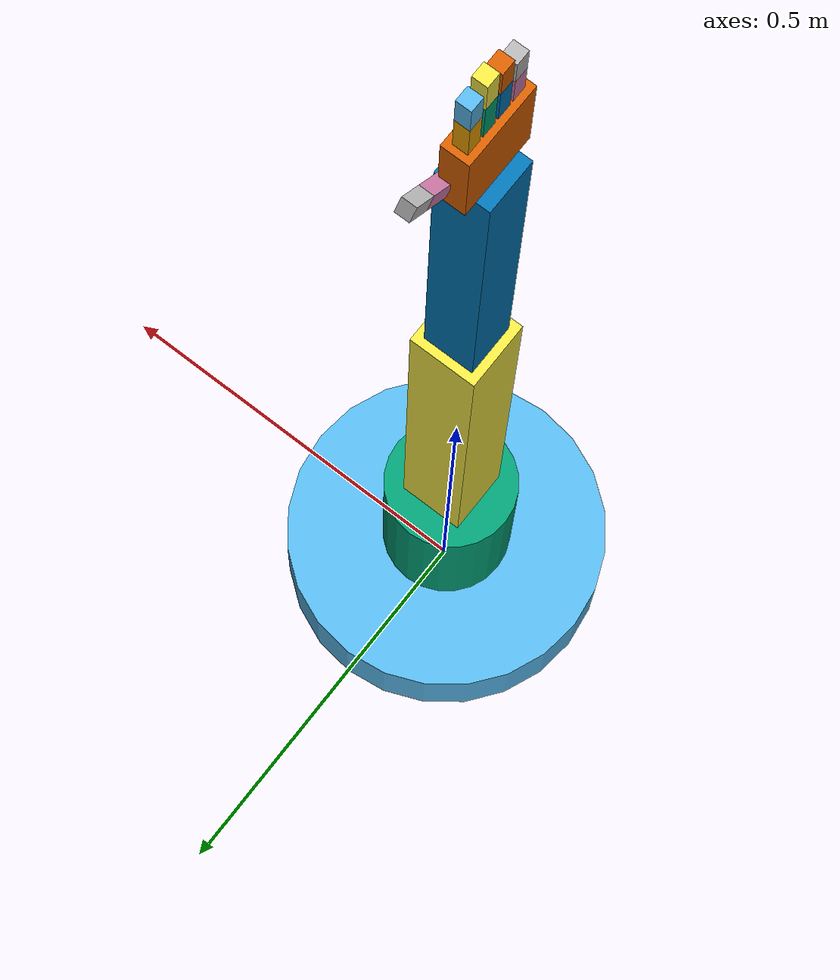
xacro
<?xml version="1.0"?>
<!-- Three-joint arm based on simple_arm.urdf with a five-finger hand.
     Process with xacro to get a plain URDF. -->
<robot name="hello_arm" xmlns:xacro="http://www.ros.org/wiki/xacro">

  <!-- Fix the arm base to the world. -->
  <link name="world"/>
  <joint name="world_to_base" type="fixed">
    <parent link="world"/>
    <child link="base_link"/>
  </joint>

  <link name="base_link">
    <visual>
      <origin xyz="0 0 0.05"/>
      <geometry><cylinder length="0.1" radius="0.2"/></geometry>
    </visual>
    <collision>
      <origin xyz="0 0 0.05"/>
      <geometry><cylinder length="0.1" radius="0.2"/></geometry>
    </collision>
    <inertial>
      <origin xyz="0 0 0.05"/>
      <mass value="5.0"/>
      <inertia ixx="0.054" ixy="0" ixz="0" iyy="0.054" iyz="0" izz="0.1"/>
    </inertial>
  </link>

  <!-- joint1: turret rotates around the vertical axis. -->
  <joint name="joint1" type="revolute">
    <parent link="base_link"/>
    <child link="link1"/>
    <origin xyz="0 0 0.1"/>
    <axis xyz="0 0 1"/>
    <limit lower="-3.14" upper="3.14" effort="100.0" velocity="2.0"/>
    <dynamics damping="1.0"/>
  </joint>

  <link name="link1">
    <visual>
      <origin xyz="0 0 0.1"/>
      <geometry><cylinder length="0.2" radius="0.08"/></geometry>
    </visual>
    <collision>
      <origin xyz="0 0 0.1"/>
      <geometry><cylinder length="0.2" radius="0.08"/></geometry>
    </collision>
    <inertial>
      <origin xyz="0 0 0.1"/>
      <mass value="1.0"/>
      <inertia ixx="0.005" ixy="0" ixz="0" iyy="0.005" iyz="0" izz="0.0032"/>
    </inertial>
  </link>

  <!-- joint2: shoulder pitch. -->
  <joint name="joint2" type="revolute">
    <parent link="link1"/>
    <child link="link2"/>
    <origin xyz="0 0 0.2"/>
    <axis xyz="0 1 0"/>
    <limit lower="-1.57" upper="1.57" effort="100.0" velocity="2.0"/>
    <dynamics damping="1.0"/>
  </joint>

  <link name="link2">
    <visual>
      <origin xyz="0 0 0.25"/>
      <geometry><box size="0.08 0.08 0.5"/></geometry>
    </visual>
    <collision>
      <origin xyz="0 0 0.25"/>
      <geometry><box size="0.08 0.08 0.5"/></geometry>
    </collision>
    <inertial>
      <origin xyz="0 0 0.25"/>
      <mass value="0.5"/>
      <inertia ixx="0.0107" ixy="0" ixz="0" iyy="0.0107" iyz="0" izz="0.0005"/>
    </inertial>
  </link>

  <!-- joint3: elbow pitch. -->
  <joint name="joint3" type="revolute">
    <parent link="link2"/>
    <child link="link3"/>
    <origin xyz="0 0 0.5"/>
    <axis xyz="0 1 0"/>
    <limit lower="-2.0" upper="2.0" effort="100.0" velocity="2.0"/>
    <dynamics damping="0.5"/>
  </joint>

  <link name="link3">
    <visual>
      <origin xyz="0 0 0.2"/>
      <geometry><box size="0.06 0.06 0.4"/></geometry>
    </visual>
    <collision>
      <origin xyz="0 0 0.2"/>
      <geometry><box size="0.06 0.06 0.4"/></geometry>
    </collision>
    <inertial>
      <origin xyz="0 0 0.2"/>
      <mass value="0.3"/>
      <inertia ixx="0.0041" ixy="0" ixz="0" iyy="0.0041" iyz="0" izz="0.0002"/>
    </inertial>
  </link>

  <!-- Colors for Gazebo (URDF material colors are not used by Gazebo). -->
  <gazebo reference="base_link">
    <visual><material><ambient>0.5 0.5 0.5 1</ambient><diffuse>0.5 0.5 0.5 1</diffuse></material></visual>
  </gazebo>
  <gazebo reference="link1">
    <visual><material><ambient>0.2 0.2 0.2 1</ambient><diffuse>0.2 0.2 0.2 1</diffuse></material></visual>
  </gazebo>
  <gazebo reference="link2">
    <visual><material><ambient>0.0 0.7 0.0 1</ambient><diffuse>0.0 0.7 0.0 1</diffuse></material></visual>
  </gazebo>
  <gazebo reference="link3">
    <visual><material><ambient>1.0 0.5 0.0 1</ambient><diffuse>1.0 0.5 0.0 1</diffuse></material></visual>
  </gazebo>

  <gazebo>
    <plugin filename="gz-sim-joint-position-controller-system" name="gz::sim::systems::JointPositionController">
      <joint_name>joint1</joint_name>
      <topic>/arm/joint1/cmd_pos</topic>
      <p_gain>40</p_gain><i_gain>0.5</i_gain><d_gain>4</d_gain>
    </plugin>
    <plugin filename="gz-sim-joint-position-controller-system" name="gz::sim::systems::JointPositionController">
      <joint_name>joint2</joint_name>
      <topic>/arm/joint2/cmd_pos</topic>
      <p_gain>80</p_gain><i_gain>20</i_gain><d_gain>6</d_gain>
      <!-- Allow enough integral torque to hold the arm and hand against gravity
           (about 7 Nm at a 0.8 rad shoulder angle). -->
      <i_max>10</i_max><i_min>-10</i_min>
    </plugin>
    <plugin filename="gz-sim-joint-position-controller-system" name="gz::sim::systems::JointPositionController">
      <joint_name>joint3</joint_name>
      <topic>/arm/joint3/cmd_pos</topic>
      <p_gain>40</p_gain><i_gain>10</i_gain><d_gain>3</d_gain>
      <i_max>4</i_max><i_min>-4</i_min>
    </plugin>
    <!-- Publishes all joint angles on /world/arm_world/model/hello_arm/joint_state. -->
    <plugin filename="gz-sim-joint-state-publisher-system" name="gz::sim::systems::JointStatePublisher"/>
  </gazebo>
  <!-- ===== Five-finger hand ===== -->

  <xacro:property name="finger_width" value="0.016"/>
  <xacro:property name="min_inertia" value="1e-5"/>

  <xacro:macro name="box_inertial" params="mass x y z">
    <inertial>
      <origin xyz="0 0 ${z / 2}"/>
      <mass value="${mass}"/>
      <inertia ixx="${max(min_inertia, mass * (y * y + z * z) / 12)}" ixy="0" ixz="0"
               iyy="${max(min_inertia, mass * (x * x + z * z) / 12)}" iyz="0"
               izz="${mass * (x * x + y * y) / 12}"/>
    </inertial>
  </xacro:macro>

  <xacro:macro name="color" params="link rgb">
    <gazebo reference="${link}">
      <visual><material><ambient>${rgb} 1</ambient><diffuse>${rgb} 1</diffuse></material></visual>
    </gazebo>
  </xacro:macro>

  <xacro:macro name="joint_controller" params="joint">
    <gazebo>
      <plugin filename="gz-sim-joint-position-controller-system" name="gz::sim::systems::JointPositionController">
        <joint_name>${joint}</joint_name>
        <topic>/hand/${joint}/cmd_pos</topic>
        <p_gain>1.0</p_gain><i_gain>0.1</i_gain><d_gain>0.01</d_gain>
        <i_max>0.05</i_max><i_min>-0.05</i_min>
        <cmd_max>2</cmd_max><cmd_min>-2</cmd_min>
      </plugin>
    </gazebo>
  </xacro:macro>

  <xacro:macro name="finger_segment" params="name parent xyz rpy length">
    <joint name="${name}" type="revolute">
      <parent link="${parent}"/>
      <child link="${name}_link"/>
      <origin xyz="${xyz}" rpy="${rpy}"/>
      <axis xyz="0 1 0"/>
      <limit lower="0" upper="1.57" effort="2.0" velocity="4.0"/>
      <dynamics damping="0.01"/>
    </joint>
    <link name="${name}_link">
      <visual>
        <origin xyz="0 0 ${length / 2}"/>
        <geometry><box size="${finger_width} ${finger_width} ${length}"/></geometry>
      </visual>
      <collision>
        <origin xyz="0 0 ${length / 2}"/>
        <geometry><box size="${finger_width} ${finger_width} ${length}"/></geometry>
      </collision>
      <xacro:box_inertial mass="0.05" x="${finger_width}" y="${finger_width}" z="${length}"/>
    </link>
    <xacro:joint_controller joint="${name}"/>
  </xacro:macro>

  <xacro:macro name="finger" params="name xyz rpy:='0 0 0' proximal distal">
    <xacro:finger_segment name="${name}_proximal" parent="palm" xyz="${xyz}" rpy="${rpy}" length="${proximal}"/>
    <xacro:finger_segment name="${name}_distal" parent="${name}_proximal_link" xyz="0 0 ${proximal}" rpy="0 0 0" length="${distal}"/>
    <xacro:color link="${name}_proximal_link" rgb="0.9 0.75 0.6"/>
    <xacro:color link="${name}_distal_link" rgb="0.8 0.6 0.45"/>
  </xacro:macro>

  <joint name="wrist" type="fixed">
    <parent link="link3"/>
    <child link="palm"/>
    <origin xyz="0 0 0.4"/>
  </joint>

  <link name="palm">
    <visual>
      <origin xyz="0 0 0.05"/>
      <geometry><box size="0.03 0.09 0.1"/></geometry>
    </visual>
    <collision>
      <origin xyz="0 0 0.05"/>
      <geometry><box size="0.03 0.09 0.1"/></geometry>
    </collision>
    <xacro:box_inertial mass="0.15" x="0.03" y="0.09" z="0.1"/>
  </link>
  <xacro:color link="palm" rgb="0.9 0.75 0.6"/>

  <!-- The thumb sits on the side of the palm and points outward and up. -->
  <xacro:finger name="thumb" xyz="0.01 0.045 0.03" rpy="-0.9 0 0" proximal="0.035" distal="0.03"/>
  <xacro:finger name="index" xyz="0 0.03 0.1" proximal="0.045" distal="0.035"/>
  <xacro:finger name="middle" xyz="0 0.01 0.1" proximal="0.05" distal="0.04"/>
  <xacro:finger name="ring" xyz="0 -0.01 0.1" proximal="0.045" distal="0.035"/>
  <xacro:finger name="little" xyz="0 -0.03 0.1" proximal="0.035" distal="0.03"/>
</robot>
